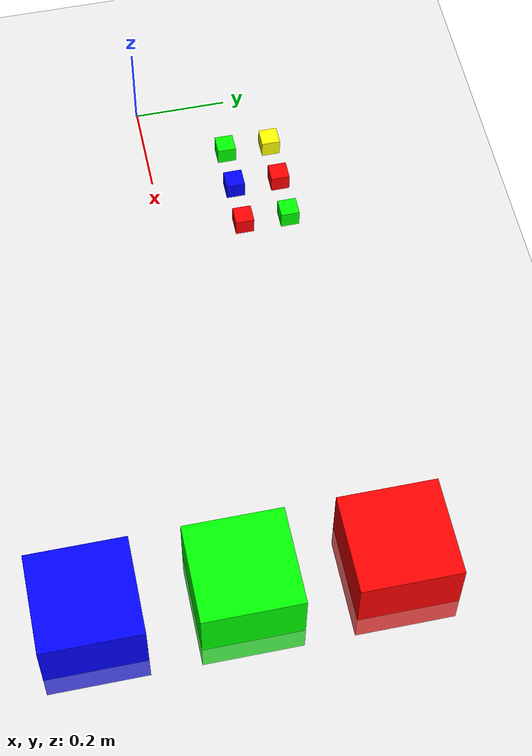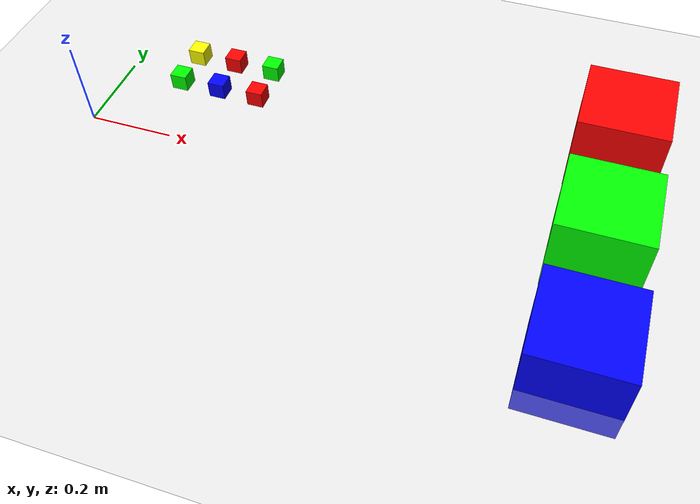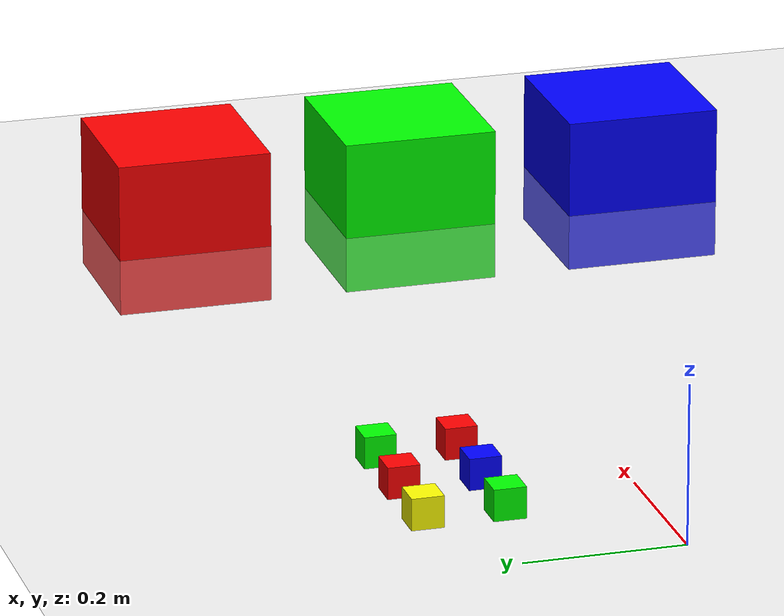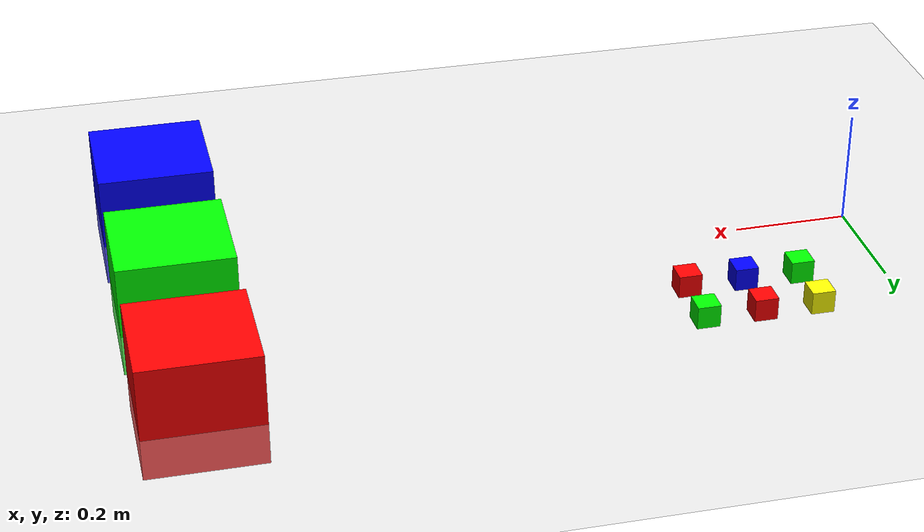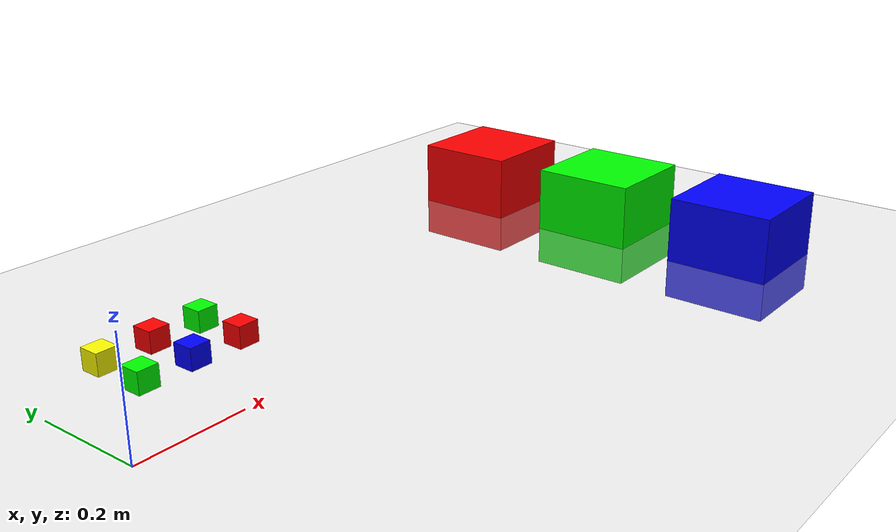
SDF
<?xml version="1.0" ?>
<sdf version="1.6">
  <world name="CRANE-X7 with Table">
    <scene>
      <shadows>0</shadows>
    </scene>

    <include>
      <uri>model://sun</uri>
    </include>

    <model name="box_1">
      <include>
        <uri>model://box_1</uri>
      </include>

      <pose>1.2 -0.30 0 0 0 0</pose>
    </model>

    <model name="box_2">
      <include>
        <uri>model://box_2</uri>
      </include>

      <pose>1.2 0.0 0 0 0 0</pose>
    </model>

    <model name="box_3">
      <include>
        <uri>model://box_3</uri>
      </include>

      <pose>1.2 0.3 0 0 0 0</pose>
    </model>

    <model name="cube_red">
      <include>
        <uri>model://cube_red</uri>
      </include>

      <pose>0.35 0.175 0 0 0 0</pose>
    </model>

    <model name="cube_blue">
      <include>
        <uri>model://cube_blue</uri>
      </include>

      <pose>0.25 0.175 0 0 0 0</pose>
    </model>

    <model name="cube_yellow">
      <include>
        <uri>model://cube_yellow</uri>
      </include>

      <pose>0.15 0.275 0 0 0 0</pose>
    </model>

    <model name="cube_green">
      <include>
        <uri>model://cube_green</uri>
      </include>

      <pose>0.35 0.275 0 0 0 0</pose>
    </model>

     <model name="cube_red2">
      <include>
        <uri>model://cube_red</uri>
      </include>

      <pose>0.25 0.275 0 0 0 0</pose>
    </model>

     <model name="cube_green2">
      <include>
        <uri>model://cube_green</uri>
      </include>

      <pose>0.15 0.175 0 0 0 0</pose>
    </model>

    <model name="ground_plane">
      <include>
        <uri>model://ground_plane</uri>
      </include>

      <joint name='ground_joint' type='fixed'>
        <parent>ground_plane::link</parent>
        <child>table::link</child>
      </joint>
    </model>
  </world>
</sdf>

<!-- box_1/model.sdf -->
<sdf version="1.5">
  <model name="box_1">
    <link name="link">
      <pose>0 0 0.025 0 0 0</pose>
      <inertial>
        <mass>0.034</mass>
        <inertia>
          <ixx>2.3541666666666672e-05</ixx>
          <ixy>0</ixy>
          <ixz>0</ixz>
          <iyy>2.3541666666666672e-05</iyy>
          <iyz>0</iyz>
          <izz>2.3541666666666672e-05</izz>
        </inertia>
      </inertial>

      <collision name="collision">
        <geometry>
          <box>
            <size>0.20 0.20 0.20</size>
          </box>
        </geometry>
        <surface>
          <contact>
            <!-- Red Pine coefficients for longitudinal axis of the wood
                 according to:
                 http://www.fpl.fs.fed.us/documnts/fplgtr/fplgtr113/ch04.pdf -->
            <poissons_ratio>0.347</poissons_ratio>
            <elastic_modulus>8.8e+09</elastic_modulus>
            <ode>
              <kp>100000</kp>
              <kd>1</kd>
              <max_vel>1.0</max_vel>
              <min_depth>0.001</min_depth>
            </ode>
          </contact>
          <friction>
            <torsional>
              <coefficient>1.0</coefficient>
              <use_patch_radius>0</use_patch_radius>
              <surface_radius>0.05</surface_radius>
            </torsional>
          </friction>
        </surface>
      </collision>

      <visual name="visual">
        <geometry>
          <box>
            <size>0.20 0.20 0.20</size>
          </box>
        </geometry>
        <material>
          <ambient>0 0 1 1</ambient>
      	  <diffuse>0 0 1 1</diffuse>
	  <specular>0.1 0.1 0.1 1</specular>
	  <emissive>0 0 0 0</emissive>
        </material>
      </visual>

    </link>
  </model>
</sdf>

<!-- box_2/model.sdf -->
<sdf version="1.5">
  <model name="box_2">
    <link name="link">
      <pose>0 0 0.025 0 0 0</pose>
      <inertial>
        <mass>0.034</mass>
        <inertia>
          <ixx>2.3541666666666672e-05</ixx>
          <ixy>0</ixy>
          <ixz>0</ixz>
          <iyy>2.3541666666666672e-05</iyy>
          <iyz>0</iyz>
          <izz>2.3541666666666672e-05</izz>
        </inertia>
      </inertial>

      <collision name="collision">
        <geometry>
          <box>
            <size>0.20 0.20 0.20</size>
          </box>
        </geometry>
        <surface>
          <contact>
            <!-- Red Pine coefficients for longitudinal axis of the wood
                 according to:
                 http://www.fpl.fs.fed.us/documnts/fplgtr/fplgtr113/ch04.pdf -->
            <poissons_ratio>0.347</poissons_ratio>
            <elastic_modulus>8.8e+09</elastic_modulus>
            <ode>
              <kp>100000</kp>
              <kd>1</kd>
              <max_vel>1.0</max_vel>
              <min_depth>0.001</min_depth>
            </ode>
          </contact>
          <friction>
            <torsional>
              <coefficient>1.0</coefficient>
              <use_patch_radius>0</use_patch_radius>
              <surface_radius>0.05</surface_radius>
            </torsional>
          </friction>
        </surface>
      </collision>

      <visual name="visual">
        <geometry>
          <box>
            <size>0.20 0.20 0.20</size>
          </box>
        </geometry>
        <material>
          <ambient>0 1 0 1</ambient>
					<diffuse>0 1 0 1</diffuse>
					<specular>0.1 0.1 0.1 1</specular>
					<emissive>0 0 0 0</emissive>
        </material>
      </visual>

    </link>
  </model>
</sdf>

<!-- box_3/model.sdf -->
<sdf version="1.5">
  <model name="box_3">
    <link name="link">
      <pose>0 0 0.025 0 0 0</pose>
      <inertial>
        <mass>0.034</mass>
        <inertia>
          <ixx>2.3541666666666672e-05</ixx>
          <ixy>0</ixy>
          <ixz>0</ixz>
          <iyy>2.3541666666666672e-05</iyy>
          <iyz>0</iyz>
          <izz>2.3541666666666672e-05</izz>
        </inertia>
      </inertial>

      <collision name="collision">
        <geometry>
          <box>
            <size>0.20 0.20 0.20</size>
          </box>
        </geometry>
        <surface>
          <contact>
            <!-- Red Pine coefficients for longitudinal axis of the wood
                 according to:
                 http://www.fpl.fs.fed.us/documnts/fplgtr/fplgtr113/ch04.pdf -->
            <poissons_ratio>0.347</poissons_ratio>
            <elastic_modulus>8.8e+09</elastic_modulus>
            <ode>
              <kp>100000</kp>
              <kd>1</kd>
              <max_vel>1.0</max_vel>
              <min_depth>0.001</min_depth>
            </ode>
          </contact>
          <friction>
            <torsional>
              <coefficient>1.0</coefficient>
              <use_patch_radius>0</use_patch_radius>
              <surface_radius>0.05</surface_radius>
            </torsional>
          </friction>
        </surface>
      </collision>

      <visual name="visual">
        <geometry>
          <box>
            <size>0.20 0.20 0.20</size>
          </box>
        </geometry>
        <material>
          <ambient>1 0 0 1</ambient>
	  <diffuse>1 0 0 1</diffuse>
	  <specular>0.1 0.1 0.1 1</specular>
	  <emissive>0 0 0 0</emissive>
        </material>
      </visual>

    </link>
  </model>
</sdf>

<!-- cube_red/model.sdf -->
<sdf version="1.5">
  <model name="cube_red">
    <link name="link">
      <pose>0 0 0.02 0 0 0</pose>
      <inertial>
        <mass>0.028</mass>
        <inertia>
          <ixx>2.3541666666666672e-05</ixx>
          <ixy>0</ixy>
          <ixz>0</ixz>
          <iyy>2.3541666666666672e-05</iyy>
          <iyz>0</iyz>
          <izz>2.3541666666666672e-05</izz>
        </inertia>
      </inertial>

      <collision name="collision">
        <geometry>
          <box>
            <size>0.04 0.04 0.04</size>
          </box>
        </geometry>
        <surface>
          <contact>
            <!-- Red Pine coefficients for longitudinal axis of the wood
                 according to:
                 http://www.fpl.fs.fed.us/documnts/fplgtr/fplgtr113/ch04.pdf -->
            <poissons_ratio>0.347</poissons_ratio>
            <elastic_modulus>8.8e+09</elastic_modulus>
            <ode>
              <kp>100000</kp>
              <kd>1</kd>
              <max_vel>1.0</max_vel>
              <min_depth>0.001</min_depth>
            </ode>
          </contact>
          <friction>
            <torsional>
              <coefficient>1.0</coefficient>
              <use_patch_radius>0</use_patch_radius>
              <surface_radius>0.05</surface_radius>
            </torsional>
          </friction>
        </surface>
      </collision>

      <visual name="visual">
        <geometry>
          <box>
            <size>0.04 0.04 0.04</size>
          </box>
        </geometry>
        <material>
         <ambient>1 0 0 1</ambient>
				 <diffuse>1 0 0 1</diffuse>
				 <specular>0.1 0.1 0.1 1</specular>
				 <emissive>0 0 0 0</emissive>
        </material>
      </visual>

    </link>
  </model>
</sdf>

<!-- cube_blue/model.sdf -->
<sdf version="1.5">
  <model name="cube_blue">
    <link name="link">
      <pose>0 0 0.02 0 0 0</pose>
      <inertial>
        <mass>0.027</mass>
        <inertia>
          <ixx>2.3541666666666672e-05</ixx>
          <ixy>0</ixy>
          <ixz>0</ixz>
          <iyy>2.3541666666666672e-05</iyy>
          <iyz>0</iyz>
          <izz>2.3541666666666672e-05</izz>
        </inertia>
      </inertial>

      <collision name="collision">
        <geometry>
          <box>
            <size>0.04 0.04 0.04</size>
          </box>
        </geometry>
        <surface>
          <contact>
            <!-- Red Pine coefficients for longitudinal axis of the wood
                 according to:
                 http://www.fpl.fs.fed.us/documnts/fplgtr/fplgtr113/ch04.pdf -->
            <poissons_ratio>0.347</poissons_ratio>
            <elastic_modulus>8.8e+09</elastic_modulus>
            <ode>
              <kp>100000</kp>
              <kd>1</kd>
              <max_vel>1.0</max_vel>
              <min_depth>0.001</min_depth>
            </ode>
          </contact>
          <friction>
            <torsional>
              <coefficient>1.0</coefficient>
              <use_patch_radius>0</use_patch_radius>
              <surface_radius>0.05</surface_radius>
            </torsional>
          </friction>
        </surface>
      </collision>

      <visual name="visual">
        <geometry>
          <box>
            <size>0.04 0.04 0.04</size>
          </box>
        </geometry>
        <material>
         <ambient>0 0 1 1</ambient>
				 <diffuse>0 0 1 1</diffuse>
				 <specular>0.1 0.1 0.1 1</specular>
				 <emissive>0 0 0 0</emissive>
        </material>
      </visual>

    </link>
  </model>
</sdf>

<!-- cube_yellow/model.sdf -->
<sdf version="1.5">
  <model name="cube_yellow">
    <link name="link">
      <pose>0 0 0.02 0 0 0</pose>
      <inertial>
        <mass>0.028</mass>
        <inertia>
          <ixx>2.3541666666666672e-05</ixx>
          <ixy>0</ixy>
          <ixz>0</ixz>
          <iyy>2.3541666666666672e-05</iyy>
          <iyz>0</iyz>
          <izz>2.3541666666666672e-05</izz>
        </inertia>
      </inertial>

      <collision name="collision">
        <geometry>
          <box>
            <size>0.04 0.04 0.04</size>
          </box>
        </geometry>
        <surface>
          <contact>
            <!-- Red Pine coefficients for longitudinal axis of the wood
                 according to:
                 http://www.fpl.fs.fed.us/documnts/fplgtr/fplgtr113/ch04.pdf -->
            <poissons_ratio>0.347</poissons_ratio>
            <elastic_modulus>8.8e+09</elastic_modulus>
            <ode>
              <kp>100000</kp>
              <kd>1</kd>
              <max_vel>1.0</max_vel>
              <min_depth>0.001</min_depth>
            </ode>
          </contact>
          <friction>
            <torsional>
              <coefficient>1.0</coefficient>
              <use_patch_radius>0</use_patch_radius>
              <surface_radius>0.05</surface_radius>
            </torsional>
          </friction>
        </surface>
      </collision>

      <visual name="visual">
        <geometry>
          <box>
            <size>0.04 0.04 0.04</size>
          </box>
        </geometry>
        <material>
         <ambient>1 1 0 1</ambient>
				 <diffuse>1 1 0 1</diffuse>
				 <specular>0.1 0.1 0.1 1</specular>
				 <emissive>0 0 0 0</emissive>
        </material>
      </visual>

    </link>
  </model>
</sdf>

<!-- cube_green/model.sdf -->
<sdf version="1.5">
  <model name="cube_green">
    <link name="link">
      <pose>0 0 0.02 0 0 0</pose>
      <inertial>
        <mass>0.028</mass>
        <inertia>
          <ixx>2.3541666666666672e-05</ixx>
          <ixy>0</ixy>
          <ixz>0</ixz>
          <iyy>2.3541666666666672e-05</iyy>
          <iyz>0</iyz>
          <izz>2.3541666666666672e-05</izz>
        </inertia>
      </inertial>

      <collision name="collision">
        <geometry>
          <box>
            <size>0.04 0.04 0.04</size>
          </box>
        </geometry>
        <surface>
          <contact>
            <!-- Red Pine coefficients for longitudinal axis of the wood
                 according to:
                 http://www.fpl.fs.fed.us/documnts/fplgtr/fplgtr113/ch04.pdf -->
            <poissons_ratio>0.347</poissons_ratio>
            <elastic_modulus>8.8e+09</elastic_modulus>
            <ode>
              <kp>100000</kp>
              <kd>1</kd>
              <max_vel>1.0</max_vel>
              <min_depth>0.001</min_depth>
            </ode>
          </contact>
          <friction>
            <torsional>
              <coefficient>1.0</coefficient>
              <use_patch_radius>0</use_patch_radius>
              <surface_radius>0.05</surface_radius>
            </torsional>
          </friction>
        </surface>
      </collision>

      <visual name="visual">
        <geometry>
          <box>
            <size>0.04 0.04 0.04</size>
          </box>
        </geometry>
        <material>
         <ambient>0 1 0 1</ambient>
	 <diffuse>0 1 0 1</diffuse>
	 <specular>0.1 0.1 0.1 1</specular>
	 <emissive>0 0 0 0</emissive>
        </material>
      </visual>

    </link>
  </model>
</sdf>
